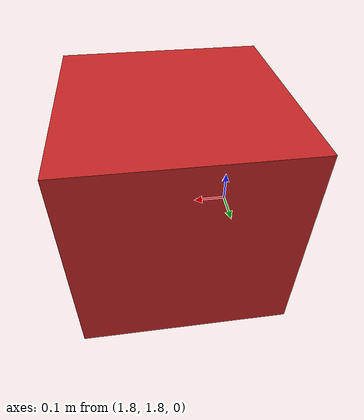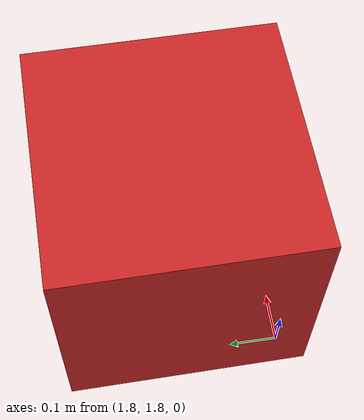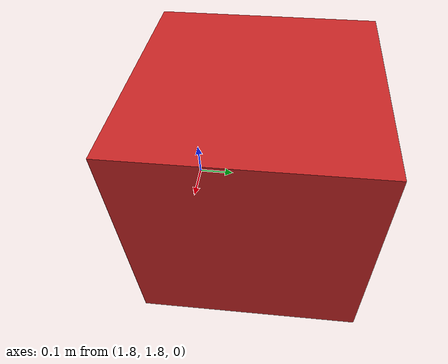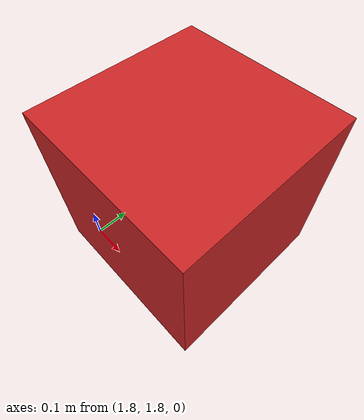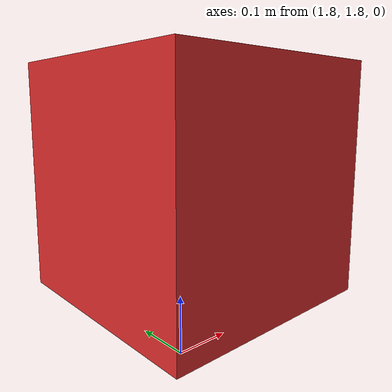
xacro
<?xml version="1.0"?>
<robot xmlns:xacro="http://www.ros.org/wiki/xacro">

    <link name="redbox">
    </link>

    <joint name="redbox_joint" type="fixed">
        <parent link="redbox"/>
        <child link="redbox_link"/>
        <origin xyz="2 2 0.25"/>
    </joint>

    <link name="redbox_link">
        <visual>
            <origin xyz="0 0 0"/>
            <geometry>
                <box size="0.5 0.5 0.5"/>
            </geometry>
            <material name="red"/>
        </visual>
        <collision>
            <origin xyz="0 0 0" rpy="0 0 0"/>
            <geometry>
                <box size="0.5 0.5 0.5"/>
            </geometry>
        </collision>
        <xacro:inertial_box mass="1" x="0" y="0" z="0">
            <origin xyz="2 2 0.25" rpy="0 0 0"/>
        </xacro:inertial_box>
    </link>
</robot>
